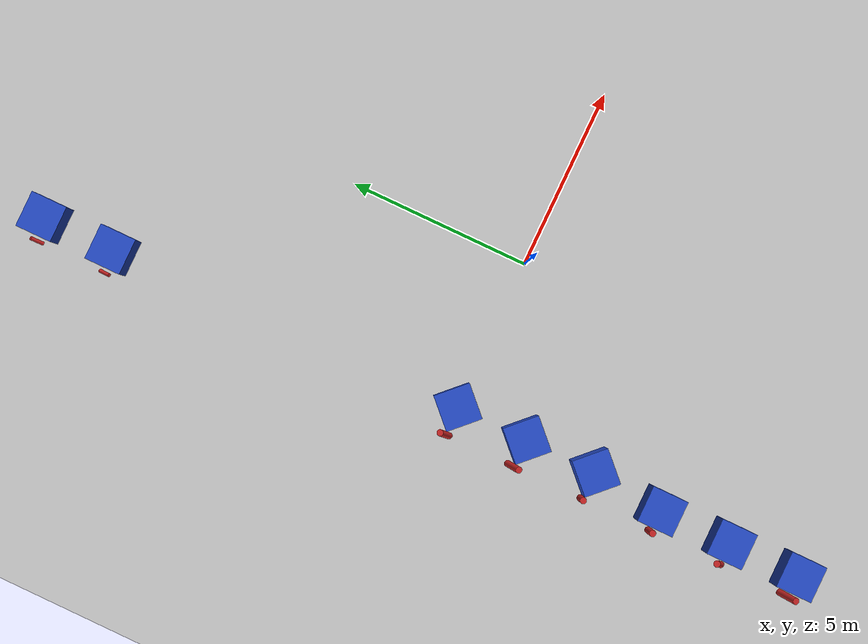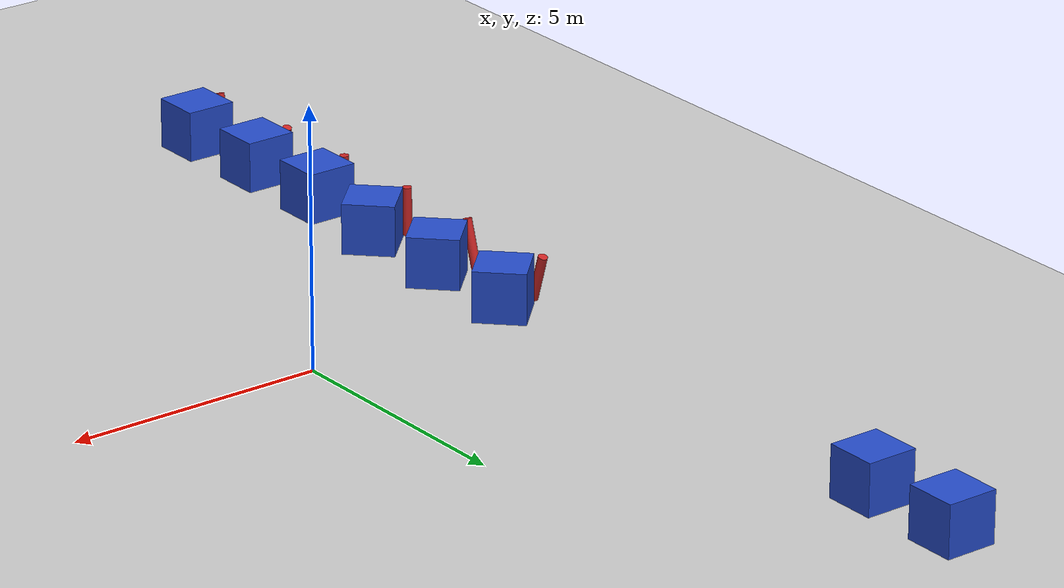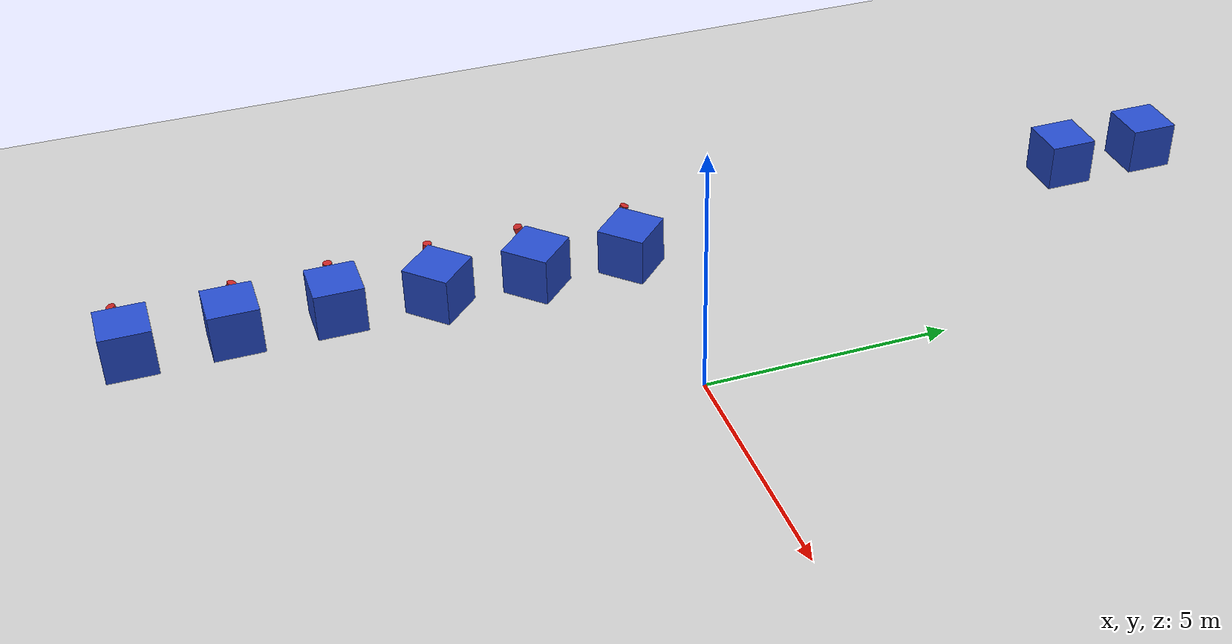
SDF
<sdf version="1.7">
 <world name="default">
  <light name="sun" type="directional">
   <pose>0 0 10 0 -0 0</pose>
   <diffuse>0.8 0.8 0.8 1</diffuse>
   <specular>0.2 0.2 0.2 1</specular>
   <attenuation>
    <range>1000</range>
    <constant>0.9</constant>
    <linear>0.01</linear>
    <quadratic>0.001</quadratic>
   </attenuation>
   <direction>-0.5 0.1 -0.9</direction>
   <spot><inner_angle>0</inner_angle><outer_angle>0</outer_angle><falloff>0</falloff></spot>
  </light>
  <model name="ground_plane">
   <static>1</static>
   <link name="link">
    <collision name="collision">
     <geometry><plane><normal>0 0 1</normal><size>100 100</size></plane></geometry>
     <surface>
      <contact><collide_bitmask>65535</collide_bitmask></contact>
      <friction><ode><mu>100</mu><mu2>50</mu2></ode></friction>
     </surface>
    </collision>
    <visual name="visual">
     <cast_shadows>0</cast_shadows>
     <geometry><plane><normal>0 0 1</normal><size>100 100</size></plane></geometry>
     <material>
      <script><uri>file://media/materials/scripts/gazebo.material</uri><name>Gazebo/Grey</name></script>
     </material>
    </visual>
   </link>
  </model>
  <gravity>0 0 -9.8</gravity>
  <magnetic_field>6e-06 2.3e-05 -4.2e-05</magnetic_field>
  <atmosphere type="adiabatic"/>
  <physics type="ode">
   <max_step_size>0.001</max_step_size>
   <real_time_factor>1</real_time_factor>
   <real_time_update_rate>10000000000000000000</real_time_update_rate>
  </physics>
  <scene><ambient>0.4 0.4 0.4 1</ambient><background>0.7 0.7 0.7 1</background><shadows>0</shadows></scene>
  <spherical_coordinates>
   <surface_model>EARTH_WGS84</surface_model>
   <latitude_deg>0</latitude_deg>
   <longitude_deg>0</longitude_deg>
   <elevation>0</elevation>
   <heading_deg>0</heading_deg>
  </spherical_coordinates>
  <include><uri>model://queenie_grasp_object_set/object_0</uri><pose>-5 -10 0.5 0 -0 0</pose></include>
  <include><uri>model://queenie_grasp_object_set/object_1</uri><pose>-5 -8 0.5 0 -0 0</pose></include>
  <include><uri>model://queenie_grasp_object_set/object_2</uri><pose>-5 -6 0.5 0 -0 0</pose></include>
  <include><uri>model://queenie_grasp_object_set/object_3</uri><pose>-5 -4 0.5 0 -0 0</pose></include>
  <include><uri>model://queenie_grasp_object_set/object_4</uri><pose>-5 -2 0.5 0 -0 0</pose></include>
  <include><uri>model://queenie_grasp_object_set/object_5</uri><pose>-5 -0 0.5 0 -0 0</pose></include>
  <include><uri>model://queenie_grasp_object_set/object_10</uri><pose>-5 10 0.5 0 -0 0</pose></include>
  <include><uri>model://queenie_grasp_object_set/object_11</uri><pose>-5 12 0.5 0 -0 0</pose></include>
 </world>
</sdf>

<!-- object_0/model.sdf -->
<sdf version='1.7'>
  <model name='object_0'>
    <link name='link'>
      <inertial>
        <mass>0.1</mass>
        <inertia>
          <ixx>0.0166667</ixx>
          <ixy>0</ixy>
          <ixz>0</ixz>
          <iyy>0.0166667</iyy>
          <iyz>0</iyz>
          <izz>0.0166667</izz>
        </inertia>
        <pose>0 0 0 0 -0 0</pose>
      </inertial>
      <self_collide>0</self_collide>
      <enable_wind>0</enable_wind>
      <kinematic>0</kinematic>
      <pose>0.63 0 0 0 -0 1.57</pose>
      <gravity>1</gravity>
      <visual name='visual'>
        <geometry>
          <box>
            <size>1 1 1</size>
          </box>
        </geometry>
        <material>
          <lighting>1</lighting>
          <script>
            <uri>file://media/materials/scripts/gazebo.material</uri>
            <name>Gazebo/Blue</name>
          </script>
          <shader type='pixel'>
            <normal_map>__default__</normal_map>
          </shader>
          <ambient>0 0 1 1</ambient>
          <diffuse>0 0 1 1</diffuse>
          <specular>0.1 0.1 0.1 1</specular>
          <emissive>0 0 0 1</emissive>
        </material>
        <pose>0 0 0 0 -0 0</pose>
        <transparency>0</transparency>
        <cast_shadows>1</cast_shadows>
      </visual>
      <collision name='large_cuboid_title_handle_collision'>
        <laser_retro>0</laser_retro>
        <max_contacts>10</max_contacts>
        <pose>0 0 0 0 -0 0</pose>
        <geometry>
          <box>
            <size>1 1 1</size>
          </box>
        </geometry>
        <surface>
          <friction>
            <ode>
              <mu>0.5</mu>
              <mu2>1</mu2>
              <fdir1>0 0 0</fdir1>
              <slip1>0</slip1>
              <slip2>0</slip2>
            </ode>
            <torsional>
              <coefficient>1</coefficient>
              <patch_radius>0</patch_radius>
              <surface_radius>0</surface_radius>
              <use_patch_radius>1</use_patch_radius>
              <ode>
                <slip>0</slip>
              </ode>
            </torsional>
          </friction>
          <bounce>
            <restitution_coefficient>0</restitution_coefficient>
            <threshold>1e+14</threshold>
          </bounce>
          <contact>
            <collide_without_contact>0</collide_without_contact>
            <collide_without_contact_bitmask>1</collide_without_contact_bitmask>
            <collide_bitmask>1</collide_bitmask>
            <ode>
              <soft_cfm>0</soft_cfm>
              <soft_erp>0.2</soft_erp>
              <kp>1e+13</kp>
              <kd>1</kd>
              <max_vel>0</max_vel>
              <min_depth>0</min_depth>
            </ode>
            <bullet>
              <split_impulse>1</split_impulse>
              <split_impulse_penetration_threshold>-0.01</split_impulse_penetration_threshold>
              <soft_cfm>0</soft_cfm>
              <soft_erp>0.2</soft_erp>
              <kp>1e+13</kp>
              <kd>1</kd>
            </bullet>
          </contact>
        </surface>
      </collision>
    </link>
    <link name='link_0'>
      <inertial>
        <mass>0.01</mass>
        <inertia>
          <ixx>0.00077631</ixx>
          <ixy>0</ixy>
          <ixz>0</ixz>
          <iyy>0.00077631</iyy>
          <iyz>0</iyz>
          <izz>4.05e-05</izz>
        </inertia>
        <pose>0 0 0 0 -0 0</pose>
      </inertial>
      <pose>0 0 0 0.3 -0 0</pose>
      <self_collide>0</self_collide>
      <enable_wind>0</enable_wind>
      <kinematic>0</kinematic>
      <gravity>1</gravity>
      <visual name='visual'>
        <pose>0 0 0 0 -0 0</pose>
        <geometry>
          <cylinder>
            <radius>0.09</radius>
            <length>0.9525</length>
          </cylinder>
        </geometry>
        <material>
          <lighting>1</lighting>
          <script>
            <uri>file://media/materials/scripts/gazebo.material</uri>
            <name>Gazebo/Red</name>
          </script>
          <shader type='pixel'>
            <normal_map>__default__</normal_map>
          </shader>
          <ambient>1 0 0 1</ambient>
          <diffuse>1 0 0 1</diffuse>
          <specular>0.1 0.1 0.1 1</specular>
          <emissive>0 0 0 1</emissive>
        </material>
        <transparency>0</transparency>
        <cast_shadows>0</cast_shadows>
      </visual>
      <collision name='collision'>
        <laser_retro>0</laser_retro>
        <max_contacts>10</max_contacts>
        <pose>0 0 0 0 -0 0</pose>
        <geometry>
          <cylinder>
            <radius>0.09</radius>
            <length>0.952508</length>
          </cylinder>
        </geometry>
        <surface>
          <friction>
            <ode>
              <mu>1</mu>
              <mu2>0.97</mu2>
              <fdir1>0 0 -1</fdir1>
              <slip1>0</slip1>
              <slip2>0</slip2>
            </ode>
            <torsional>
              <coefficient>1</coefficient>
              <patch_radius>0.1</patch_radius>
              <surface_radius>0</surface_radius>
              <use_patch_radius>1</use_patch_radius>
              <ode>
                <slip>0</slip>
              </ode>
            </torsional>
          </friction>
          <bounce>
            <restitution_coefficient>0</restitution_coefficient>
            <threshold>1e+06</threshold>
          </bounce>
          <contact>
            <collide_without_contact>0</collide_without_contact>
            <collide_without_contact_bitmask>1</collide_without_contact_bitmask>
            <collide_bitmask>1</collide_bitmask>
            <ode>
              <soft_cfm>0</soft_cfm>
              <soft_erp>0.2</soft_erp>
              <kp>1e+13</kp>
              <kd>1</kd>
              <max_vel>0</max_vel>
              <min_depth>0</min_depth>
            </ode>
            <bullet>
              <split_impulse>1</split_impulse>
              <split_impulse_penetration_threshold>-0.01</split_impulse_penetration_threshold>
              <soft_cfm>0</soft_cfm>
              <soft_erp>0.2</soft_erp>
              <kp>1e+13</kp>
              <kd>1</kd>
            </bullet>
          </contact>
        </surface>
      </collision>
    </link>
    <joint name='link_JOINT_0' type='fixed'>
      <parent>link</parent>
      <child>link_0</child>
      <pose>0 0 0 0 -0 0</pose>
      <physics>
        <ode>
          <limit>
            <cfm>0</cfm>
            <erp>0.2</erp>
          </limit>
          <suspension>
            <cfm>0</cfm>
            <erp>0.2</erp>
          </suspension>
        </ode>
      </physics>
    </joint>
    <static>0</static>
    <allow_auto_disable>1</allow_auto_disable>
  </model>
</sdf>

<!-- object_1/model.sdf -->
<sdf version='1.7'>
  <model name='object_1'>
    <link name='link'>
      <inertial>
        <mass>0.1</mass>
        <inertia>
          <ixx>0.0166667</ixx>
          <ixy>0</ixy>
          <ixz>0</ixz>
          <iyy>0.0166667</iyy>
          <iyz>0</iyz>
          <izz>0.0166667</izz>
        </inertia>
        <pose>0 0 0 0 -0 0</pose>
      </inertial>
      <self_collide>0</self_collide>
      <enable_wind>0</enable_wind>
      <kinematic>0</kinematic>
      <pose>0.63 0 0 0 -0 1.57</pose>
      <gravity>1</gravity>
      <visual name='visual'>
        <geometry>
          <box>
            <size>1 1 1</size>
          </box>
        </geometry>
        <material>
          <lighting>1</lighting>
          <script>
            <uri>file://media/materials/scripts/gazebo.material</uri>
            <name>Gazebo/Blue</name>
          </script>
          <shader type='pixel'>
            <normal_map>__default__</normal_map>
          </shader>
          <ambient>0 0 1 1</ambient>
          <diffuse>0 0 1 1</diffuse>
          <specular>0.1 0.1 0.1 1</specular>
          <emissive>0 0 0 1</emissive>
        </material>
        <pose>0 0 0 0 -0 0</pose>
        <transparency>0</transparency>
        <cast_shadows>1</cast_shadows>
      </visual>
      <collision name='large_cuboid_title_handle_collision'>
        <laser_retro>0</laser_retro>
        <max_contacts>10</max_contacts>
        <pose>0 0 0 0 -0 0</pose>
        <geometry>
          <box>
            <size>1 1 1</size>
          </box>
        </geometry>
        <surface>
          <friction>
            <ode>
              <mu>0.5</mu>
              <mu2>1</mu2>
              <fdir1>0 0 0</fdir1>
              <slip1>0</slip1>
              <slip2>0</slip2>
            </ode>
            <torsional>
              <coefficient>1</coefficient>
              <patch_radius>0</patch_radius>
              <surface_radius>0</surface_radius>
              <use_patch_radius>1</use_patch_radius>
              <ode>
                <slip>0</slip>
              </ode>
            </torsional>
          </friction>
          <bounce>
            <restitution_coefficient>0</restitution_coefficient>
            <threshold>1e+14</threshold>
          </bounce>
          <contact>
            <collide_without_contact>0</collide_without_contact>
            <collide_without_contact_bitmask>1</collide_without_contact_bitmask>
            <collide_bitmask>1</collide_bitmask>
            <ode>
              <soft_cfm>0</soft_cfm>
              <soft_erp>0.2</soft_erp>
              <kp>1e+13</kp>
              <kd>1</kd>
              <max_vel>0</max_vel>
              <min_depth>0</min_depth>
            </ode>
            <bullet>
              <split_impulse>1</split_impulse>
              <split_impulse_penetration_threshold>-0.01</split_impulse_penetration_threshold>
              <soft_cfm>0</soft_cfm>
              <soft_erp>0.2</soft_erp>
              <kp>1e+13</kp>
              <kd>1</kd>
            </bullet>
          </contact>
        </surface>
      </collision>
    </link>
    <link name='link_0'>
      <inertial>
        <mass>0.01</mass>
        <inertia>
          <ixx>0.00077631</ixx>
          <ixy>0</ixy>
          <ixz>0</ixz>
          <iyy>0.00077631</iyy>
          <iyz>0</iyz>
          <izz>4.05e-05</izz>
        </inertia>
        <pose>0 0 0 0 -0 0</pose>
      </inertial>
      <pose>0 0 0 -0.3 -0 -0</pose>
      <self_collide>0</self_collide>
      <enable_wind>0</enable_wind>
      <kinematic>0</kinematic>
      <gravity>1</gravity>
      <visual name='visual'>
        <pose>0 0 0 0 -0 0</pose>
        <geometry>
          <cylinder>
            <radius>0.09</radius>
            <length>0.9525</length>
          </cylinder>
        </geometry>
        <material>
          <lighting>1</lighting>
          <script>
            <uri>file://media/materials/scripts/gazebo.material</uri>
            <name>Gazebo/Red</name>
          </script>
          <shader type='pixel'>
            <normal_map>__default__</normal_map>
          </shader>
          <ambient>1 0 0 1</ambient>
          <diffuse>1 0 0 1</diffuse>
          <specular>0.1 0.1 0.1 1</specular>
          <emissive>0 0 0 1</emissive>
        </material>
        <transparency>0</transparency>
        <cast_shadows>0</cast_shadows>
      </visual>
      <collision name='collision'>
        <laser_retro>0</laser_retro>
        <max_contacts>10</max_contacts>
        <pose>0 0 0 0 -0 0</pose>
        <geometry>
          <cylinder>
            <radius>0.09</radius>
            <length>0.952508</length>
          </cylinder>
        </geometry>
        <surface>
          <friction>
            <ode>
              <mu>1</mu>
              <mu2>0.97</mu2>
              <fdir1>0 0 -1</fdir1>
              <slip1>0</slip1>
              <slip2>0</slip2>
            </ode>
            <torsional>
              <coefficient>1</coefficient>
              <patch_radius>0.1</patch_radius>
              <surface_radius>0</surface_radius>
              <use_patch_radius>1</use_patch_radius>
              <ode>
                <slip>0</slip>
              </ode>
            </torsional>
          </friction>
          <bounce>
            <restitution_coefficient>0</restitution_coefficient>
            <threshold>1e+06</threshold>
          </bounce>
          <contact>
            <collide_without_contact>0</collide_without_contact>
            <collide_without_contact_bitmask>1</collide_without_contact_bitmask>
            <collide_bitmask>1</collide_bitmask>
            <ode>
              <soft_cfm>0</soft_cfm>
              <soft_erp>0.2</soft_erp>
              <kp>1e+13</kp>
              <kd>1</kd>
              <max_vel>0</max_vel>
              <min_depth>0</min_depth>
            </ode>
            <bullet>
              <split_impulse>1</split_impulse>
              <split_impulse_penetration_threshold>-0.01</split_impulse_penetration_threshold>
              <soft_cfm>0</soft_cfm>
              <soft_erp>0.2</soft_erp>
              <kp>1e+13</kp>
              <kd>1</kd>
            </bullet>
          </contact>
        </surface>
      </collision>
    </link>
    <joint name='link_JOINT_0' type='fixed'>
      <parent>link</parent>
      <child>link_0</child>
      <pose>0 0 0 0 -0 0</pose>
      <physics>
        <ode>
          <limit>
            <cfm>0</cfm>
            <erp>0.2</erp>
          </limit>
          <suspension>
            <cfm>0</cfm>
            <erp>0.2</erp>
          </suspension>
        </ode>
      </physics>
    </joint>
    <static>0</static>
    <allow_auto_disable>1</allow_auto_disable>
  </model>
</sdf>

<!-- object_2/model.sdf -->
<sdf version='1.7'>
  <model name='object_2'>
    <link name='link'>
      <inertial>
        <mass>0.1</mass>
        <inertia>
          <ixx>0.0166667</ixx>
          <ixy>0</ixy>
          <ixz>0</ixz>
          <iyy>0.0166667</iyy>
          <iyz>0</iyz>
          <izz>0.0166667</izz>
        </inertia>
        <pose>0 0 0 0 -0 0</pose>
      </inertial>
      <self_collide>0</self_collide>
      <enable_wind>0</enable_wind>
      <kinematic>0</kinematic>
      <pose>0.63 0 0 0 -0 1.57</pose>
      <gravity>1</gravity>
      <visual name='visual'>
        <geometry>
          <box>
            <size>1 1 1</size>
          </box>
        </geometry>
        <material>
          <lighting>1</lighting>
          <script>
            <uri>file://media/materials/scripts/gazebo.material</uri>
            <name>Gazebo/Blue</name>
          </script>
          <shader type='pixel'>
            <normal_map>__default__</normal_map>
          </shader>
          <ambient>0 0 1 1</ambient>
          <diffuse>0 0 1 1</diffuse>
          <specular>0.1 0.1 0.1 1</specular>
          <emissive>0 0 0 1</emissive>
        </material>
        <pose>0 0 0 0 -0 0</pose>
        <transparency>0</transparency>
        <cast_shadows>1</cast_shadows>
      </visual>
      <collision name='large_cuboid_title_handle_collision'>
        <laser_retro>0</laser_retro>
        <max_contacts>10</max_contacts>
        <pose>0 0 0 0 -0 0</pose>
        <geometry>
          <box>
            <size>1 1 1</size>
          </box>
        </geometry>
        <surface>
          <friction>
            <ode>
              <mu>0.5</mu>
              <mu2>1</mu2>
              <fdir1>0 0 0</fdir1>
              <slip1>0</slip1>
              <slip2>0</slip2>
            </ode>
            <torsional>
              <coefficient>1</coefficient>
              <patch_radius>0</patch_radius>
              <surface_radius>0</surface_radius>
              <use_patch_radius>1</use_patch_radius>
              <ode>
                <slip>0</slip>
              </ode>
            </torsional>
          </friction>
          <bounce>
            <restitution_coefficient>0</restitution_coefficient>
            <threshold>1e+14</threshold>
          </bounce>
          <contact>
            <collide_without_contact>0</collide_without_contact>
            <collide_without_contact_bitmask>1</collide_without_contact_bitmask>
            <collide_bitmask>1</collide_bitmask>
            <ode>
              <soft_cfm>0</soft_cfm>
              <soft_erp>0.2</soft_erp>
              <kp>1e+13</kp>
              <kd>1</kd>
              <max_vel>0</max_vel>
              <min_depth>0</min_depth>
            </ode>
            <bullet>
              <split_impulse>1</split_impulse>
              <split_impulse_penetration_threshold>-0.01</split_impulse_penetration_threshold>
              <soft_cfm>0</soft_cfm>
              <soft_erp>0.2</soft_erp>
              <kp>1e+13</kp>
              <kd>1</kd>
            </bullet>
          </contact>
        </surface>
      </collision>
    </link>
    <link name='link_0'>
      <inertial>
        <mass>0.01</mass>
        <inertia>
          <ixx>0.00077631</ixx>
          <ixy>0</ixy>
          <ixz>0</ixz>
          <iyy>0.00077631</iyy>
          <iyz>0</iyz>
          <izz>4.05e-05</izz>
        </inertia>
        <pose>0 0 0 0 -0 0</pose>
      </inertial>
      <pose>0 0 0 0 -0 0</pose>
      <self_collide>0</self_collide>
      <enable_wind>0</enable_wind>
      <kinematic>0</kinematic>
      <gravity>1</gravity>
      <visual name='visual'>
        <pose>0 0 0 0 -0 0</pose>
        <geometry>
          <cylinder>
            <radius>0.09</radius>
            <length>0.9525</length>
          </cylinder>
        </geometry>
        <material>
          <lighting>1</lighting>
          <script>
            <uri>file://media/materials/scripts/gazebo.material</uri>
            <name>Gazebo/Red</name>
          </script>
          <shader type='pixel'>
            <normal_map>__default__</normal_map>
          </shader>
          <ambient>1 0 0 1</ambient>
          <diffuse>1 0 0 1</diffuse>
          <specular>0.1 0.1 0.1 1</specular>
          <emissive>0 0 0 1</emissive>
        </material>
        <transparency>0</transparency>
        <cast_shadows>0</cast_shadows>
      </visual>
      <collision name='collision'>
        <laser_retro>0</laser_retro>
        <max_contacts>10</max_contacts>
        <pose>0 0 0 0 -0 0</pose>
        <geometry>
          <cylinder>
            <radius>0.09</radius>
            <length>0.952508</length>
          </cylinder>
        </geometry>
        <surface>
          <friction>
            <ode>
              <mu>1</mu>
              <mu2>0.97</mu2>
              <fdir1>0 0 -1</fdir1>
              <slip1>0</slip1>
              <slip2>0</slip2>
            </ode>
            <torsional>
              <coefficient>1</coefficient>
              <patch_radius>0.1</patch_radius>
              <surface_radius>0</surface_radius>
              <use_patch_radius>1</use_patch_radius>
              <ode>
                <slip>0</slip>
              </ode>
            </torsional>
          </friction>
          <bounce>
            <restitution_coefficient>0</restitution_coefficient>
            <threshold>1e+06</threshold>
          </bounce>
          <contact>
            <collide_without_contact>0</collide_without_contact>
            <collide_without_contact_bitmask>1</collide_without_contact_bitmask>
            <collide_bitmask>1</collide_bitmask>
            <ode>
              <soft_cfm>0</soft_cfm>
              <soft_erp>0.2</soft_erp>
              <kp>1e+13</kp>
              <kd>1</kd>
              <max_vel>0</max_vel>
              <min_depth>0</min_depth>
            </ode>
            <bullet>
              <split_impulse>1</split_impulse>
              <split_impulse_penetration_threshold>-0.01</split_impulse_penetration_threshold>
              <soft_cfm>0</soft_cfm>
              <soft_erp>0.2</soft_erp>
              <kp>1e+13</kp>
              <kd>1</kd>
            </bullet>
          </contact>
        </surface>
      </collision>
    </link>
    <joint name='link_JOINT_0' type='fixed'>
      <parent>link</parent>
      <child>link_0</child>
      <pose>0 0 0 0 -0 0</pose>
      <physics>
        <ode>
          <limit>
            <cfm>0</cfm>
            <erp>0.2</erp>
          </limit>
          <suspension>
            <cfm>0</cfm>
            <erp>0.2</erp>
          </suspension>
        </ode>
      </physics>
    </joint>
    <static>0</static>
    <allow_auto_disable>1</allow_auto_disable>
  </model>
</sdf>

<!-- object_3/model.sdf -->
<sdf version='1.7'>
  <model name='object_3'>
    <link name='link'>
      <inertial>
        <mass>0.1</mass>
        <inertia>
          <ixx>0.0166667</ixx>
          <ixy>0</ixy>
          <ixz>0</ixz>
          <iyy>0.0166667</iyy>
          <iyz>0</iyz>
          <izz>0.0166667</izz>
        </inertia>
        <pose>0 0 0 0 -0 0</pose>
      </inertial>
      <self_collide>0</self_collide>
      <enable_wind>0</enable_wind>
      <kinematic>0</kinematic>
      <pose>0.8 -0 0 0 -0 0.78534</pose>
      <gravity>1</gravity>
      <visual name='visual'>
        <geometry>
          <box>
            <size>1 1 1</size>
          </box>
        </geometry>
        <material>
          <lighting>1</lighting>
          <script>
            <uri>file://media/materials/scripts/gazebo.material</uri>
            <name>Gazebo/Blue</name>
          </script>
          <shader type='pixel'>
            <normal_map>__default__</normal_map>
          </shader>
          <ambient>0 0 1 1</ambient>
          <diffuse>0 0 1 1</diffuse>
          <specular>0.1 0.1 0.1 1</specular>
          <emissive>0 0 0 1</emissive>
        </material>
        <pose>0 0 0 0 -0 0</pose>
        <transparency>0</transparency>
        <cast_shadows>1</cast_shadows>
      </visual>
      <collision name='large_cuboid_title_handle_collision'>
        <laser_retro>0</laser_retro>
        <max_contacts>10</max_contacts>
        <pose>0 0 0 0 -0 0</pose>
        <geometry>
          <box>
            <size>1 1 1</size>
          </box>
        </geometry>
        <surface>
          <friction>
            <ode>
              <mu>0.5</mu>
              <mu2>1</mu2>
              <fdir1>0 0 0</fdir1>
              <slip1>0</slip1>
              <slip2>0</slip2>
            </ode>
            <torsional>
              <coefficient>1</coefficient>
              <patch_radius>0</patch_radius>
              <surface_radius>0</surface_radius>
              <use_patch_radius>1</use_patch_radius>
              <ode>
                <slip>0</slip>
              </ode>
            </torsional>
          </friction>
          <bounce>
            <restitution_coefficient>0</restitution_coefficient>
            <threshold>1e+14</threshold>
          </bounce>
          <contact>
            <collide_without_contact>0</collide_without_contact>
            <collide_without_contact_bitmask>1</collide_without_contact_bitmask>
            <collide_bitmask>1</collide_bitmask>
            <ode>
              <soft_cfm>0</soft_cfm>
              <soft_erp>0.2</soft_erp>
              <kp>1e+13</kp>
              <kd>1</kd>
              <max_vel>0</max_vel>
              <min_depth>0</min_depth>
            </ode>
            <bullet>
              <split_impulse>1</split_impulse>
              <split_impulse_penetration_threshold>-0.01</split_impulse_penetration_threshold>
              <soft_cfm>0</soft_cfm>
              <soft_erp>0.2</soft_erp>
              <kp>1e+13</kp>
              <kd>1</kd>
            </bullet>
          </contact>
        </surface>
      </collision>
    </link>
    <link name='link_0'>
      <inertial>
        <mass>0.01</mass>
        <inertia>
          <ixx>0.00077631</ixx>
          <ixy>0</ixy>
          <ixz>0</ixz>
          <iyy>0.00077631</iyy>
          <iyz>0</iyz>
          <izz>4.05e-05</izz>
        </inertia>
        <pose>0 0 0 0 -0 0</pose>
      </inertial>
      <pose>0 0 0 0 -0 0</pose>
      <self_collide>0</self_collide>
      <enable_wind>0</enable_wind>
      <kinematic>0</kinematic>
      <gravity>1</gravity>
      <visual name='visual'>
        <pose>0 0 0 0 -0 0</pose>
        <geometry>
          <cylinder>
            <radius>0.09</radius>
            <length>0.9525</length>
          </cylinder>
        </geometry>
        <material>
          <lighting>1</lighting>
          <script>
            <uri>file://media/materials/scripts/gazebo.material</uri>
            <name>Gazebo/Red</name>
          </script>
          <shader type='pixel'>
            <normal_map>__default__</normal_map>
          </shader>
          <ambient>1 0 0 1</ambient>
          <diffuse>1 0 0 1</diffuse>
          <specular>0.1 0.1 0.1 1</specular>
          <emissive>0 0 0 1</emissive>
        </material>
        <transparency>0</transparency>
        <cast_shadows>0</cast_shadows>
      </visual>
      <collision name='collision'>
        <laser_retro>0</laser_retro>
        <max_contacts>10</max_contacts>
        <pose>0 0 0 0 -0 0</pose>
        <geometry>
          <cylinder>
            <radius>0.09</radius>
            <length>0.952508</length>
          </cylinder>
        </geometry>
        <surface>
          <friction>
            <ode>
              <mu>1</mu>
              <mu2>1</mu2>
              <fdir1>0 0 -1</fdir1>
              <slip1>0</slip1>
              <slip2>0</slip2>
            </ode>
            <torsional>
              <coefficient>1</coefficient>
              <patch_radius>0.1</patch_radius>
              <surface_radius>0</surface_radius>
              <use_patch_radius>1</use_patch_radius>
              <ode>
                <slip>0</slip>
              </ode>
            </torsional>
          </friction>
          <bounce>
            <restitution_coefficient>0</restitution_coefficient>
            <threshold>1e+06</threshold>
          </bounce>
          <contact>
            <collide_without_contact>0</collide_without_contact>
            <collide_without_contact_bitmask>1</collide_without_contact_bitmask>
            <collide_bitmask>1</collide_bitmask>
            <ode>
              <soft_cfm>0</soft_cfm>
              <soft_erp>0.2</soft_erp>
              <kp>1e+13</kp>
              <kd>1</kd>
              <max_vel>0</max_vel>
              <min_depth>0</min_depth>
            </ode>
            <bullet>
              <split_impulse>1</split_impulse>
              <split_impulse_penetration_threshold>-0.01</split_impulse_penetration_threshold>
              <soft_cfm>0</soft_cfm>
              <soft_erp>0.2</soft_erp>
              <kp>1e+13</kp>
              <kd>1</kd>
            </bullet>
          </contact>
        </surface>
      </collision>
    </link>
    <joint name='link_JOINT_0' type='fixed'>
      <parent>link</parent>
      <child>link_0</child>
      <pose>0 0 0 0 -0 0</pose>
      <physics>
        <ode>
          <limit>
            <cfm>0</cfm>
            <erp>0.2</erp>
          </limit>
          <suspension>
            <cfm>0</cfm>
            <erp>0.2</erp>
          </suspension>
        </ode>
      </physics>
    </joint>
    <static>0</static>
    <allow_auto_disable>1</allow_auto_disable>
  </model>
</sdf>

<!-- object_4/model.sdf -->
<sdf version='1.7'>
  <model name='object_4'>
    <link name='link'>
      <inertial>
        <mass>0.1</mass>
        <inertia>
          <ixx>0.0166667</ixx>
          <ixy>0</ixy>
          <ixz>0</ixz>
          <iyy>0.0166667</iyy>
          <iyz>0</iyz>
          <izz>0.0166667</izz>
        </inertia>
        <pose>0 0 0 0 -0 0</pose>
      </inertial>
      <self_collide>0</self_collide>
      <enable_wind>0</enable_wind>
      <kinematic>0</kinematic>
      <pose>0.8 -0 0 0 -0 0.78534</pose>
      <gravity>1</gravity>
      <visual name='visual'>
        <geometry>
          <box>
            <size>1 1 1</size>
          </box>
        </geometry>
        <material>
          <lighting>1</lighting>
          <script>
            <uri>file://media/materials/scripts/gazebo.material</uri>
            <name>Gazebo/Blue</name>
          </script>
          <shader type='pixel'>
            <normal_map>__default__</normal_map>
          </shader>
          <ambient>0 0 1 1</ambient>
          <diffuse>0 0 1 1</diffuse>
          <specular>0.1 0.1 0.1 1</specular>
          <emissive>0 0 0 1</emissive>
        </material>
        <pose>0 0 0 0 -0 0</pose>
        <transparency>0</transparency>
        <cast_shadows>1</cast_shadows>
      </visual>
      <collision name='large_cuboid_title_handle_collision'>
        <laser_retro>0</laser_retro>
        <max_contacts>10</max_contacts>
        <pose>0 0 0 0 -0 0</pose>
        <geometry>
          <box>
            <size>1 1 1</size>
          </box>
        </geometry>
        <surface>
          <friction>
            <ode>
              <mu>0.5</mu>
              <mu2>1</mu2>
              <fdir1>0 0 0</fdir1>
              <slip1>0</slip1>
              <slip2>0</slip2>
            </ode>
            <torsional>
              <coefficient>1</coefficient>
              <patch_radius>0</patch_radius>
              <surface_radius>0</surface_radius>
              <use_patch_radius>1</use_patch_radius>
              <ode>
                <slip>0</slip>
              </ode>
            </torsional>
          </friction>
          <bounce>
            <restitution_coefficient>0</restitution_coefficient>
            <threshold>1e+14</threshold>
          </bounce>
          <contact>
            <collide_without_contact>0</collide_without_contact>
            <collide_without_contact_bitmask>1</collide_without_contact_bitmask>
            <collide_bitmask>1</collide_bitmask>
            <ode>
              <soft_cfm>0</soft_cfm>
              <soft_erp>0.2</soft_erp>
              <kp>1e+13</kp>
              <kd>1</kd>
              <max_vel>0</max_vel>
              <min_depth>0</min_depth>
            </ode>
            <bullet>
              <split_impulse>1</split_impulse>
              <split_impulse_penetration_threshold>-0.01</split_impulse_penetration_threshold>
              <soft_cfm>0</soft_cfm>
              <soft_erp>0.2</soft_erp>
              <kp>1e+13</kp>
              <kd>1</kd>
            </bullet>
          </contact>
        </surface>
      </collision>
    </link>
    <link name='link_0'>
      <inertial>
        <mass>0.01</mass>
        <inertia>
          <ixx>0.00077631</ixx>
          <ixy>0</ixy>
          <ixz>0</ixz>
          <iyy>0.00077631</iyy>
          <iyz>0</iyz>
          <izz>4.05e-05</izz>
        </inertia>
        <pose>0 0 0 0 -0 0</pose>
      </inertial>
      <pose>0 0 0 0.3 -0 0</pose>
      <self_collide>0</self_collide>
      <enable_wind>0</enable_wind>
      <kinematic>0</kinematic>
      <gravity>1</gravity>
      <visual name='visual'>
        <pose>0 0 0 0 -0 0</pose>
        <geometry>
          <cylinder>
            <radius>0.09</radius>
            <length>0.9525</length>
          </cylinder>
        </geometry>
        <material>
          <lighting>1</lighting>
          <script>
            <uri>file://media/materials/scripts/gazebo.material</uri>
            <name>Gazebo/Red</name>
          </script>
          <shader type='pixel'>
            <normal_map>__default__</normal_map>
          </shader>
          <ambient>1 0 0 1</ambient>
          <diffuse>1 0 0 1</diffuse>
          <specular>0.1 0.1 0.1 1</specular>
          <emissive>0 0 0 1</emissive>
        </material>
        <transparency>0</transparency>
        <cast_shadows>0</cast_shadows>
      </visual>
      <collision name='collision'>
        <laser_retro>0</laser_retro>
        <max_contacts>10</max_contacts>
        <pose>0 0 0 0 -0 0</pose>
        <geometry>
          <cylinder>
            <radius>0.09</radius>
            <length>0.952508</length>
          </cylinder>
        </geometry>
        <surface>
          <friction>
            <ode>
              <mu>1</mu>
              <mu2>1</mu2>
              <fdir1>0 0 -1</fdir1>
              <slip1>0</slip1>
              <slip2>0</slip2>
            </ode>
            <torsional>
              <coefficient>1</coefficient>
              <patch_radius>0.1</patch_radius>
              <surface_radius>0</surface_radius>
              <use_patch_radius>1</use_patch_radius>
              <ode>
                <slip>0</slip>
              </ode>
            </torsional>
          </friction>
          <bounce>
            <restitution_coefficient>0</restitution_coefficient>
            <threshold>1e+06</threshold>
          </bounce>
          <contact>
            <collide_without_contact>0</collide_without_contact>
            <collide_without_contact_bitmask>1</collide_without_contact_bitmask>
            <collide_bitmask>1</collide_bitmask>
            <ode>
              <soft_cfm>0</soft_cfm>
              <soft_erp>0.2</soft_erp>
              <kp>1e+13</kp>
              <kd>1</kd>
              <max_vel>0</max_vel>
              <min_depth>0</min_depth>
            </ode>
            <bullet>
              <split_impulse>1</split_impulse>
              <split_impulse_penetration_threshold>-0.01</split_impulse_penetration_threshold>
              <soft_cfm>0</soft_cfm>
              <soft_erp>0.2</soft_erp>
              <kp>1e+13</kp>
              <kd>1</kd>
            </bullet>
          </contact>
        </surface>
      </collision>
    </link>
    <joint name='link_JOINT_0' type='fixed'>
      <parent>link</parent>
      <child>link_0</child>
      <pose>0 0 0 0 -0 0</pose>
      <physics>
        <ode>
          <limit>
            <cfm>0</cfm>
            <erp>0.2</erp>
          </limit>
          <suspension>
            <cfm>0</cfm>
            <erp>0.2</erp>
          </suspension>
        </ode>
      </physics>
    </joint>
    <static>0</static>
    <allow_auto_disable>1</allow_auto_disable>
  </model>
</sdf>

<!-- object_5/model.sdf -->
<sdf version='1.7'>
  <model name='object_5'>
    <link name='link'>
      <inertial>
        <mass>0.1</mass>
        <inertia>
          <ixx>0.0166667</ixx>
          <ixy>0</ixy>
          <ixz>0</ixz>
          <iyy>0.0166667</iyy>
          <iyz>0</iyz>
          <izz>0.0166667</izz>
        </inertia>
        <pose>0 0 0 0 -0 0</pose>
      </inertial>
      <self_collide>0</self_collide>
      <enable_wind>0</enable_wind>
      <kinematic>0</kinematic>
      <pose>0.8 -0 0 0 -0 0.78534</pose>
      <gravity>1</gravity>
      <visual name='visual'>
        <geometry>
          <box>
            <size>1 1 1</size>
          </box>
        </geometry>
        <material>
          <lighting>1</lighting>
          <script>
            <uri>file://media/materials/scripts/gazebo.material</uri>
            <name>Gazebo/Blue</name>
          </script>
          <shader type='pixel'>
            <normal_map>__default__</normal_map>
          </shader>
          <ambient>0 0 1 1</ambient>
          <diffuse>0 0 1 1</diffuse>
          <specular>0.1 0.1 0.1 1</specular>
          <emissive>0 0 0 1</emissive>
        </material>
        <pose>0 0 0 0 -0 0</pose>
        <transparency>0</transparency>
        <cast_shadows>1</cast_shadows>
      </visual>
      <collision name='large_cuboid_title_handle_collision'>
        <laser_retro>0</laser_retro>
        <max_contacts>10</max_contacts>
        <pose>0 0 0 0 -0 0</pose>
        <geometry>
          <box>
            <size>1 1 1</size>
          </box>
        </geometry>
        <surface>
          <friction>
            <ode>
              <mu>0.5</mu>
              <mu2>1</mu2>
              <fdir1>0 0 0</fdir1>
              <slip1>0</slip1>
              <slip2>0</slip2>
            </ode>
            <torsional>
              <coefficient>1</coefficient>
              <patch_radius>0</patch_radius>
              <surface_radius>0</surface_radius>
              <use_patch_radius>1</use_patch_radius>
              <ode>
                <slip>0</slip>
              </ode>
            </torsional>
          </friction>
          <bounce>
            <restitution_coefficient>0</restitution_coefficient>
            <threshold>1e+14</threshold>
          </bounce>
          <contact>
            <collide_without_contact>0</collide_without_contact>
            <collide_without_contact_bitmask>1</collide_without_contact_bitmask>
            <collide_bitmask>1</collide_bitmask>
            <ode>
              <soft_cfm>0</soft_cfm>
              <soft_erp>0.2</soft_erp>
              <kp>1e+13</kp>
              <kd>1</kd>
              <max_vel>0</max_vel>
              <min_depth>0</min_depth>
            </ode>
            <bullet>
              <split_impulse>1</split_impulse>
              <split_impulse_penetration_threshold>-0.01</split_impulse_penetration_threshold>
              <soft_cfm>0</soft_cfm>
              <soft_erp>0.2</soft_erp>
              <kp>1e+13</kp>
              <kd>1</kd>
            </bullet>
          </contact>
        </surface>
      </collision>
    </link>
    <link name='link_0'>
      <inertial>
        <mass>0.01</mass>
        <inertia>
          <ixx>0.00077631</ixx>
          <ixy>0</ixy>
          <ixz>0</ixz>
          <iyy>0.00077631</iyy>
          <iyz>0</iyz>
          <izz>4.05e-05</izz>
        </inertia>
        <pose>0 0 0 0 -0 0</pose>
      </inertial>
      <pose>0 0 0 -0.3 -0 -0</pose>
      <self_collide>0</self_collide>
      <enable_wind>0</enable_wind>
      <kinematic>0</kinematic>
      <gravity>1</gravity>
      <visual name='visual'>
        <pose>0 0 0 0 -0 0</pose>
        <geometry>
          <cylinder>
            <radius>0.09</radius>
            <length>0.9525</length>
          </cylinder>
        </geometry>
        <material>
          <lighting>1</lighting>
          <script>
            <uri>file://media/materials/scripts/gazebo.material</uri>
            <name>Gazebo/Red</name>
          </script>
          <shader type='pixel'>
            <normal_map>__default__</normal_map>
          </shader>
          <ambient>1 0 0 1</ambient>
          <diffuse>1 0 0 1</diffuse>
          <specular>0.1 0.1 0.1 1</specular>
          <emissive>0 0 0 1</emissive>
        </material>
        <transparency>0</transparency>
        <cast_shadows>0</cast_shadows>
      </visual>
      <collision name='collision'>
        <laser_retro>0</laser_retro>
        <max_contacts>10</max_contacts>
        <pose>0 0 0 0 -0 0</pose>
        <geometry>
          <cylinder>
            <radius>0.09</radius>
            <length>0.952508</length>
          </cylinder>
        </geometry>
        <surface>
          <friction>
            <ode>
              <mu>1</mu>
              <mu2>1</mu2>
              <fdir1>0 0 -1</fdir1>
              <slip1>0</slip1>
              <slip2>0</slip2>
            </ode>
            <torsional>
              <coefficient>1</coefficient>
              <patch_radius>0.1</patch_radius>
              <surface_radius>0</surface_radius>
              <use_patch_radius>1</use_patch_radius>
              <ode>
                <slip>0</slip>
              </ode>
            </torsional>
          </friction>
          <bounce>
            <restitution_coefficient>0</restitution_coefficient>
            <threshold>1e+06</threshold>
          </bounce>
          <contact>
            <collide_without_contact>0</collide_without_contact>
            <collide_without_contact_bitmask>1</collide_without_contact_bitmask>
            <collide_bitmask>1</collide_bitmask>
            <ode>
              <soft_cfm>0</soft_cfm>
              <soft_erp>0.2</soft_erp>
              <kp>1e+13</kp>
              <kd>1</kd>
              <max_vel>0</max_vel>
              <min_depth>0</min_depth>
            </ode>
            <bullet>
              <split_impulse>1</split_impulse>
              <split_impulse_penetration_threshold>-0.01</split_impulse_penetration_threshold>
              <soft_cfm>0</soft_cfm>
              <soft_erp>0.2</soft_erp>
              <kp>1e+13</kp>
              <kd>1</kd>
            </bullet>
          </contact>
        </surface>
      </collision>
    </link>
    <joint name='link_JOINT_0' type='fixed'>
      <parent>link</parent>
      <child>link_0</child>
      <pose>0 0 0 0 -0 0</pose>
      <physics>
        <ode>
          <limit>
            <cfm>0</cfm>
            <erp>0.2</erp>
          </limit>
          <suspension>
            <cfm>0</cfm>
            <erp>0.2</erp>
          </suspension>
        </ode>
      </physics>
    </joint>
    <static>0</static>
    <allow_auto_disable>1</allow_auto_disable>
  </model>
</sdf>

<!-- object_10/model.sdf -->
<sdf version='1.7'>
  <model name='object_10'>
    <link name='link'>
      <inertial>
        <mass>0.1</mass>
        <inertia>
          <ixx>0.0833333</ixx>
          <ixy>0</ixy>
          <ixz>0</ixz>
          <iyy>0.0166667</iyy>
          <iyz>0</iyz>
          <izz>0.0833333</izz>
        </inertia>
        <pose>0 0 0 0 -0 0</pose>
      </inertial>
      <self_collide>0</self_collide>
      <enable_wind>0</enable_wind>
      <kinematic>0</kinematic>
      <pose>0.65 -0 0 0 -0 0</pose>
      <gravity>1</gravity>
      <visual name='visual'>
        <geometry>
          <box>
            <size>1 1 1</size>
          </box>
        </geometry>
        <material>
          <lighting>1</lighting>
          <script>
            <uri>file://media/materials/scripts/gazebo.material</uri>
            <name>Gazebo/Blue</name>
          </script>
          <shader type='pixel'>
            <normal_map>__default__</normal_map>
          </shader>
          <ambient>0 0 1 1</ambient>
          <diffuse>0 0 1 1</diffuse>
          <specular>0.1 0.1 0.1 1</specular>
          <emissive>0 0 0 1</emissive>
        </material>
        <pose>0 0 0 0 -0 0</pose>
        <transparency>0</transparency>
        <cast_shadows>1</cast_shadows>
      </visual>
      <collision name='large_cuboid_title_handle_collision'>
        <laser_retro>0</laser_retro>
        <max_contacts>10</max_contacts>
        <pose>0 0 0 0 -0 0</pose>
        <geometry>
          <box>
            <size>1 1 1</size>
          </box>
        </geometry>
        <surface>
          <friction>
            <ode>
              <mu>0.5</mu>
              <mu2>1</mu2>
              <fdir1>0 0 0</fdir1>
              <slip1>0</slip1>
              <slip2>0</slip2>
            </ode>
            <torsional>
              <coefficient>1</coefficient>
              <patch_radius>0</patch_radius>
              <surface_radius>0</surface_radius>
              <use_patch_radius>1</use_patch_radius>
              <ode>
                <slip>0</slip>
              </ode>
            </torsional>
          </friction>
          <bounce>
            <restitution_coefficient>0</restitution_coefficient>
            <threshold>1e+14</threshold>
          </bounce>
          <contact>
            <collide_without_contact>0</collide_without_contact>
            <collide_without_contact_bitmask>1</collide_without_contact_bitmask>
            <collide_bitmask>1</collide_bitmask>
            <ode>
              <soft_cfm>0</soft_cfm>
              <soft_erp>0.2</soft_erp>
              <kp>1e+13</kp>
              <kd>1e+10</kd>
              <max_vel>0</max_vel>
              <min_depth>0</min_depth>
            </ode>
            <bullet>
              <split_impulse>1</split_impulse>
              <split_impulse_penetration_threshold>-0.01</split_impulse_penetration_threshold>
              <soft_cfm>0</soft_cfm>
              <soft_erp>0.2</soft_erp>
              <kp>1e+13</kp>
              <kd>1e+10</kd>
            </bullet>
          </contact>
        </surface>
      </collision>
    </link>
    <link name='link_0'>
      <inertial>
        <mass>0.05</mass>
        <inertia>
          <ixx>0.00388155</ixx>
          <ixy>0</ixy>
          <ixz>0</ixz>
          <iyy>0.00388155</iyy>
          <iyz>0</iyz>
          <izz>0.0002025</izz>
        </inertia>
        <pose>0 0 0 0 -0 0</pose>
      </inertial>
      <pose>-0 0 -0.3 0.9 -0 0</pose>
      <self_collide>0</self_collide>
      <enable_wind>0</enable_wind>
      <kinematic>0</kinematic>
      <gravity>1</gravity>
      <visual name='visual'>
        <pose>0 0 0 0 -0 0</pose>
        <geometry>
          <cylinder>
            <radius>0.05</radius>
            <length>0.4</length>
          </cylinder>
        </geometry>
        <material>
          <lighting>1</lighting>
          <script>
            <uri>file://media/materials/scripts/gazebo.material</uri>
            <name>Gazebo/Red</name>
          </script>
          <shader type='pixel'>
            <normal_map>__default__</normal_map>
          </shader>
          <ambient>1 0 0 1</ambient>
          <diffuse>1 0 0 1</diffuse>
          <specular>0.1 0.1 0.1 1</specular>
          <emissive>0 0 0 1</emissive>
        </material>
        <transparency>0</transparency>
        <cast_shadows>0</cast_shadows>
      </visual>
      <collision name='collision'>
        <laser_retro>0</laser_retro>
        <max_contacts>10</max_contacts>
        <pose>0 0 0 0 -0 0</pose>
        <geometry>
          <cylinder>
            <radius>0.05</radius>
            <length>0.4</length>
          </cylinder>
        </geometry>
        <surface>
          <friction>
            <ode>
              <mu>1</mu>
              <mu2>1</mu2>
              <fdir1>0 0 -1</fdir1>
              <slip1>0</slip1>
              <slip2>0</slip2>
            </ode>
            <torsional>
              <coefficient>1</coefficient>
              <patch_radius>0.1</patch_radius>
              <surface_radius>0</surface_radius>
              <use_patch_radius>1</use_patch_radius>
              <ode>
                <slip>0</slip>
              </ode>
            </torsional>
          </friction>
          <bounce>
            <restitution_coefficient>0</restitution_coefficient>
            <threshold>1e+06</threshold>
          </bounce>
          <contact>
            <collide_without_contact>0</collide_without_contact>
            <collide_without_contact_bitmask>1</collide_without_contact_bitmask>
            <collide_bitmask>1</collide_bitmask>
            <ode>
              <soft_cfm>0</soft_cfm>
              <soft_erp>0.2</soft_erp>
              <kp>1e+13</kp>
              <kd>1e+12</kd>
              <max_vel>0</max_vel>
              <min_depth>0</min_depth>
            </ode>
            <bullet>
              <split_impulse>1</split_impulse>
              <split_impulse_penetration_threshold>-0.01</split_impulse_penetration_threshold>
              <soft_cfm>0</soft_cfm>
              <soft_erp>0.2</soft_erp>
              <kp>1e+13</kp>
              <kd>1e+12</kd>
            </bullet>
          </contact>
        </surface>
      </collision>
    </link>
    <joint name='link_JOINT_0' type='fixed'>
      <parent>link</parent>
      <child>link_0</child>
      <pose>0 0 0 0 -0 0</pose>
      <physics>
        <ode>
          <limit>
            <cfm>0</cfm>
            <erp>0.2</erp>
          </limit>
          <suspension>
            <cfm>0</cfm>
            <erp>0.2</erp>
          </suspension>
        </ode>
      </physics>
    </joint>
    <static>0</static>
    <allow_auto_disable>1</allow_auto_disable>
  </model>
</sdf>

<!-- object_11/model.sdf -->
<sdf version='1.7'>
  <model name='object_11'>
    <link name='link'>
      <inertial>
        <mass>0.1</mass>
        <inertia>
          <ixx>0.0833333</ixx>
          <ixy>0</ixy>
          <ixz>0</ixz>
          <iyy>0.0166667</iyy>
          <iyz>0</iyz>
          <izz>0.0833333</izz>
        </inertia>
        <pose>0 0 0 0 -0 0</pose>
      </inertial>
      <self_collide>0</self_collide>
      <enable_wind>0</enable_wind>
      <kinematic>0</kinematic>
      <pose>0.649999 0 -0 0 -0 0</pose>
      <gravity>1</gravity>
      <visual name='visual'>
        <geometry>
          <box>
            <size>1 1 1</size>
          </box>
        </geometry>
        <material>
          <lighting>1</lighting>
          <script>
            <uri>file://media/materials/scripts/gazebo.material</uri>
            <name>Gazebo/Blue</name>
          </script>
          <shader type='pixel'>
            <normal_map>__default__</normal_map>
          </shader>
          <ambient>0 0 1 1</ambient>
          <diffuse>0 0 1 1</diffuse>
          <specular>0.1 0.1 0.1 1</specular>
          <emissive>0 0 0 1</emissive>
        </material>
        <pose>0 0 0 0 -0 0</pose>
        <transparency>0</transparency>
        <cast_shadows>1</cast_shadows>
      </visual>
      <collision name='large_cuboid_title_handle_collision'>
        <laser_retro>0</laser_retro>
        <max_contacts>10</max_contacts>
        <pose>0 0 0 0 -0 0</pose>
        <geometry>
          <box>
            <size>1 1 1</size>
          </box>
        </geometry>
        <surface>
          <friction>
            <ode>
              <mu>0.5</mu>
              <mu2>1</mu2>
              <fdir1>0 0 0</fdir1>
              <slip1>0</slip1>
              <slip2>0</slip2>
            </ode>
            <torsional>
              <coefficient>1</coefficient>
              <patch_radius>0</patch_radius>
              <surface_radius>0</surface_radius>
              <use_patch_radius>1</use_patch_radius>
              <ode>
                <slip>0</slip>
              </ode>
            </torsional>
          </friction>
          <bounce>
            <restitution_coefficient>0</restitution_coefficient>
            <threshold>1e+14</threshold>
          </bounce>
          <contact>
            <collide_without_contact>0</collide_without_contact>
            <collide_without_contact_bitmask>1</collide_without_contact_bitmask>
            <collide_bitmask>1</collide_bitmask>
            <ode>
              <soft_cfm>0</soft_cfm>
              <soft_erp>0.2</soft_erp>
              <kp>1e+13</kp>
              <kd>1e+10</kd>
              <max_vel>0</max_vel>
              <min_depth>0</min_depth>
            </ode>
            <bullet>
              <split_impulse>1</split_impulse>
              <split_impulse_penetration_threshold>-0.01</split_impulse_penetration_threshold>
              <soft_cfm>0</soft_cfm>
              <soft_erp>0.2</soft_erp>
              <kp>1e+13</kp>
              <kd>1e+10</kd>
            </bullet>
          </contact>
        </surface>
      </collision>
    </link>
    <link name='link_0'>
      <inertial>
        <mass>0.05</mass>
        <inertia>
          <ixx>0.00388155</ixx>
          <ixy>0</ixy>
          <ixz>0</ixz>
          <iyy>0.00388155</iyy>
          <iyz>0</iyz>
          <izz>0.0002025</izz>
        </inertia>
        <pose>0 0 0 0 -0 0</pose>
      </inertial>
      <pose>0 0 -0.3 -0.9 -0 -0</pose>
      <self_collide>0</self_collide>
      <enable_wind>0</enable_wind>
      <kinematic>0</kinematic>
      <gravity>1</gravity>
      <visual name='visual'>
        <pose>0 0 0 0 -0 0</pose>
        <geometry>
          <cylinder>
            <radius>0.05</radius>
            <length>0.4</length>
          </cylinder>
        </geometry>
        <material>
          <lighting>1</lighting>
          <script>
            <uri>file://media/materials/scripts/gazebo.material</uri>
            <name>Gazebo/Red</name>
          </script>
          <shader type='pixel'>
            <normal_map>__default__</normal_map>
          </shader>
          <ambient>1 0 0 1</ambient>
          <diffuse>1 0 0 1</diffuse>
          <specular>0.1 0.1 0.1 1</specular>
          <emissive>0 0 0 1</emissive>
        </material>
        <transparency>0</transparency>
        <cast_shadows>0</cast_shadows>
      </visual>
      <collision name='collision'>
        <laser_retro>0</laser_retro>
        <max_contacts>10</max_contacts>
        <pose>0 0 0 0 -0 0</pose>
        <geometry>
          <cylinder>
            <radius>0.05</radius>
            <length>0.4</length>
          </cylinder>
        </geometry>
        <surface>
          <friction>
            <ode>
              <mu>1</mu>
              <mu2>1</mu2>
              <fdir1>0 0 -1</fdir1>
              <slip1>0</slip1>
              <slip2>0</slip2>
            </ode>
            <torsional>
              <coefficient>1</coefficient>
              <patch_radius>0.1</patch_radius>
              <surface_radius>0</surface_radius>
              <use_patch_radius>1</use_patch_radius>
              <ode>
                <slip>0</slip>
              </ode>
            </torsional>
          </friction>
          <bounce>
            <restitution_coefficient>0</restitution_coefficient>
            <threshold>1e+06</threshold>
          </bounce>
          <contact>
            <collide_without_contact>0</collide_without_contact>
            <collide_without_contact_bitmask>1</collide_without_contact_bitmask>
            <collide_bitmask>1</collide_bitmask>
            <ode>
              <soft_cfm>0</soft_cfm>
              <soft_erp>0.2</soft_erp>
              <kp>1e+13</kp>
              <kd>1e+12</kd>
              <max_vel>0</max_vel>
              <min_depth>0</min_depth>
            </ode>
            <bullet>
              <split_impulse>1</split_impulse>
              <split_impulse_penetration_threshold>-0.01</split_impulse_penetration_threshold>
              <soft_cfm>0</soft_cfm>
              <soft_erp>0.2</soft_erp>
              <kp>1e+13</kp>
              <kd>1e+12</kd>
            </bullet>
          </contact>
        </surface>
      </collision>
    </link>
    <joint name='link_JOINT_0' type='fixed'>
      <parent>link</parent>
      <child>link_0</child>
      <pose>0 0 0 0 -0 0</pose>
      <physics>
        <ode>
          <limit>
            <cfm>0</cfm>
            <erp>0.2</erp>
          </limit>
          <suspension>
            <cfm>0</cfm>
            <erp>0.2</erp>
          </suspension>
        </ode>
      </physics>
    </joint>
    <static>0</static>
    <allow_auto_disable>1</allow_auto_disable>
  </model>
</sdf>
